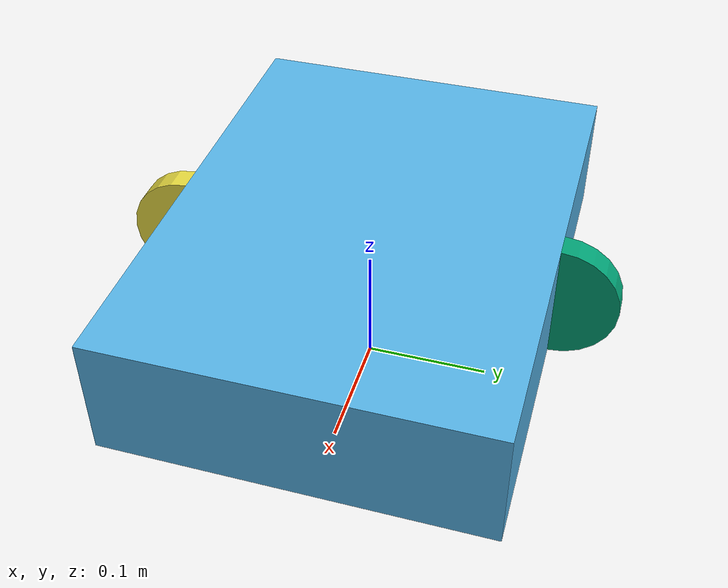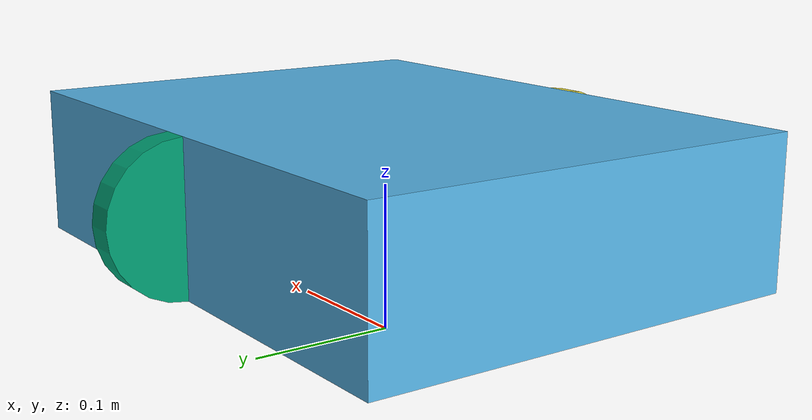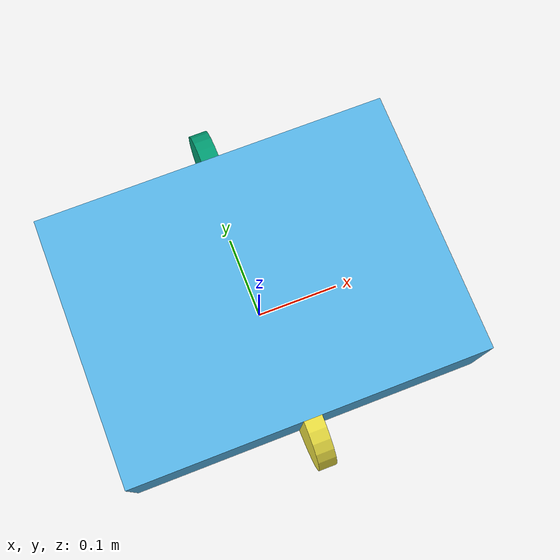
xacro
<?xml version="1.0"?>
<robot name="amr_robot" xmlns:xacro="http://www.ros.org/wiki/xacro">

  <xacro:property name="wheel_radius" value="0.05"/>
  <xacro:property name="wheel_length" value="0.02"/>
  <xacro:property name="wheel_separation" value="0.30"/>

  <link name="base_footprint"/>
  <joint name="base_footprint_joint" type="fixed">
    <parent link="base_footprint"/>
    <child link="base_link"/>
    <origin xyz="0 0 0.1" rpy="0 0 0"/>
  </joint>

  <link name="base_link">
    <visual>
      <geometry><box size="0.4 0.3 0.1"/></geometry>
    </visual>
    <collision>
      <geometry><box size="0.4 0.3 0.1"/></geometry>
    </collision>
    <inertial>
      <origin xyz="0 0 0"/>
      <mass value="10.0"/>
      <inertia ixx="1.0" ixy="0.0" ixz="0.0" iyy="1.0" iyz="0.0" izz="1.0"/>
    </inertial>
  </link>

  <link name="left_wheel">
    <visual>
      <geometry><cylinder radius="${wheel_radius}" length="${wheel_length}"/></geometry>
    </visual>
    <collision>
      <geometry><cylinder radius="${wheel_radius}" length="${wheel_length}"/></geometry>
    </collision>
    <inertial>
      <mass value="0.5"/>
      <inertia ixx="0.01" ixy="0.0" ixz="0.0" iyy="0.01" iyz="0.0" izz="0.01"/>
    </inertial>
  </link>

  <joint name="left_wheel_joint" type="continuous">
    <parent link="base_link"/>
    <child link="left_wheel"/>
    <origin xyz="0 ${wheel_separation/2} 0" rpy="0 1.5708 0"/>
    <axis xyz="0 0 1"/>
  </joint>

  <link name="right_wheel">
    <visual>
      <geometry><cylinder radius="${wheel_radius}" length="${wheel_length}"/></geometry>
    </visual>
    <collision>
      <geometry><cylinder radius="${wheel_radius}" length="${wheel_length}"/></geometry>
    </collision>
    <inertial>
      <mass value="0.5"/>
      <inertia ixx="0.01" ixy="0.0" ixz="0.0" iyy="0.01" iyz="0.0" izz="0.01"/>
    </inertial>
  </link>

  <joint name="right_wheel_joint" type="continuous">
    <parent link="base_link"/>
    <child link="right_wheel"/>
    <origin xyz="0 -${wheel_separation/2} 0" rpy="0 1.5708 0"/>
    <axis xyz="0 0 1"/>
  </joint>

 <gazebo>
  <plugin filename="libign_ros2_control-system.so" name="ign_ros2_control::IgnitionROS2ControlPlugin">
    <parameters>$(find amr_description)/config/diff_drive.yaml</parameters>
  </plugin>
</gazebo>

  <ros2_control name="IgnitionSystem" type="system">
    <hardware><plugin>ign_ros2_control/IgnitionSystem</plugin></hardware>
    <joint name="left_wheel_joint">
      <command_interface name="velocity"/><state_interface name="position"/><state_interface name="velocity"/>
    </joint>
    <joint name="right_wheel_joint">
      <command_interface name="velocity"/><state_interface name="position"/><state_interface name="velocity"/>
    </joint>
  </ros2_control>
</robot>
